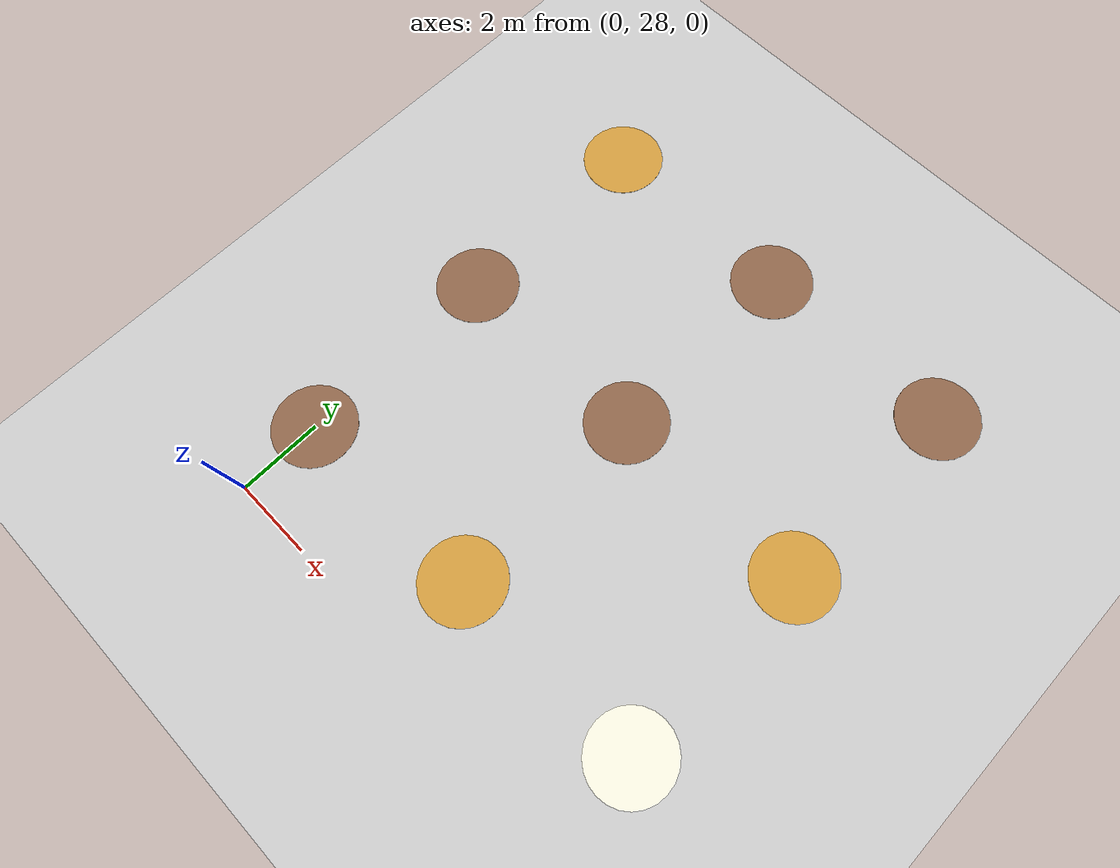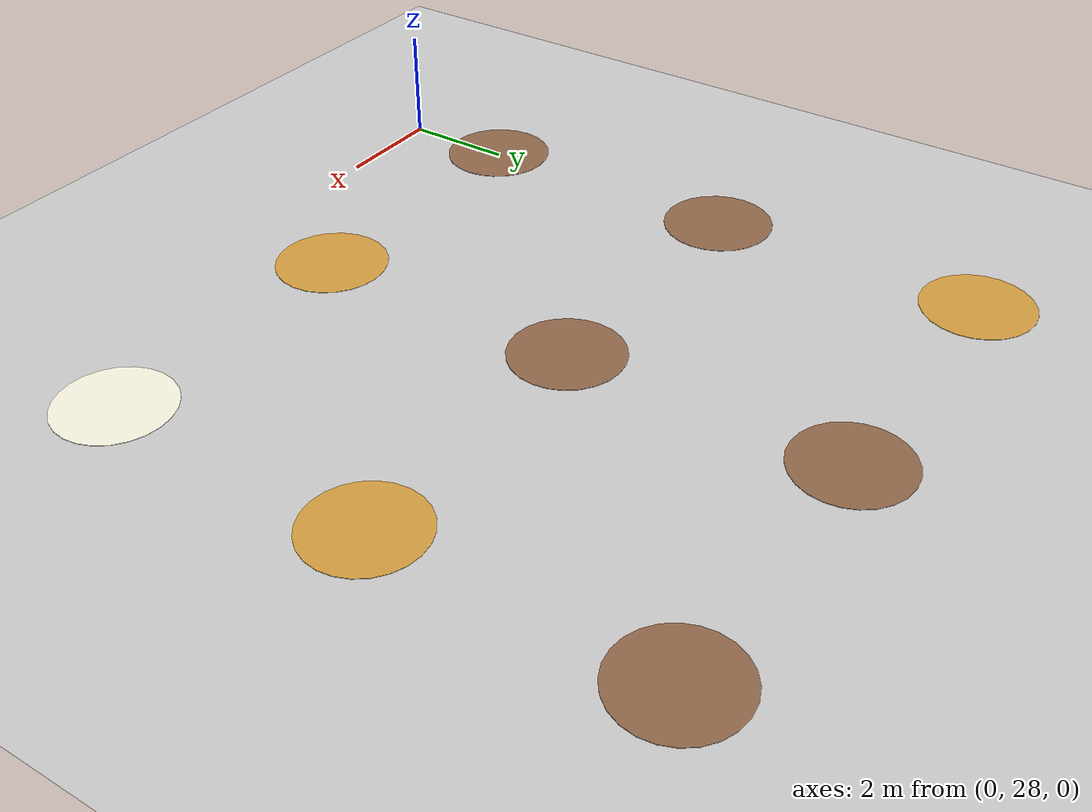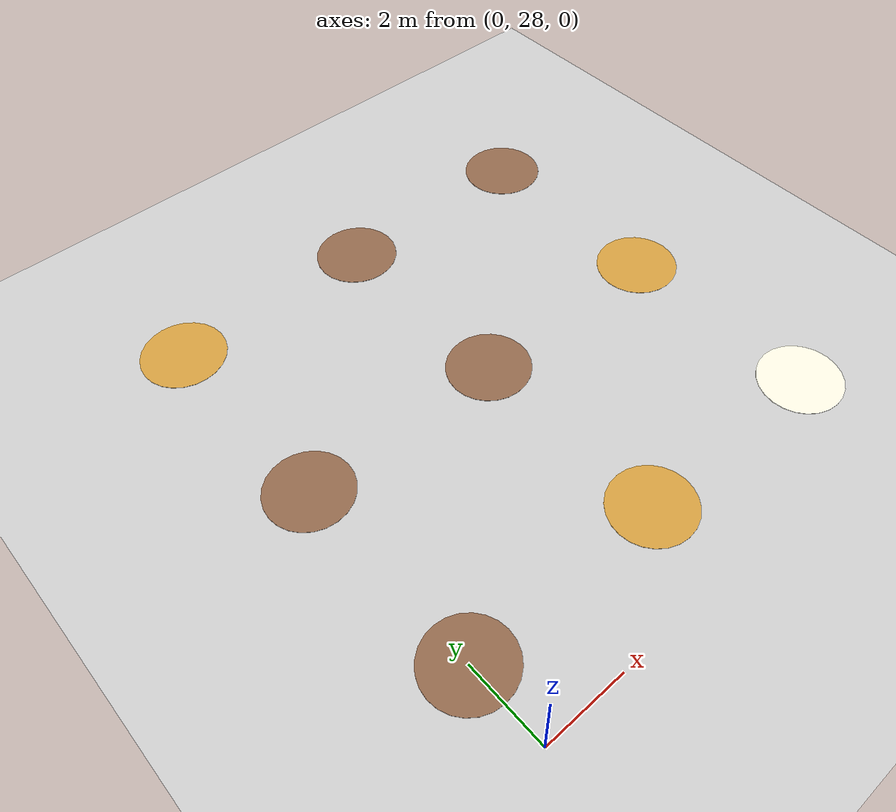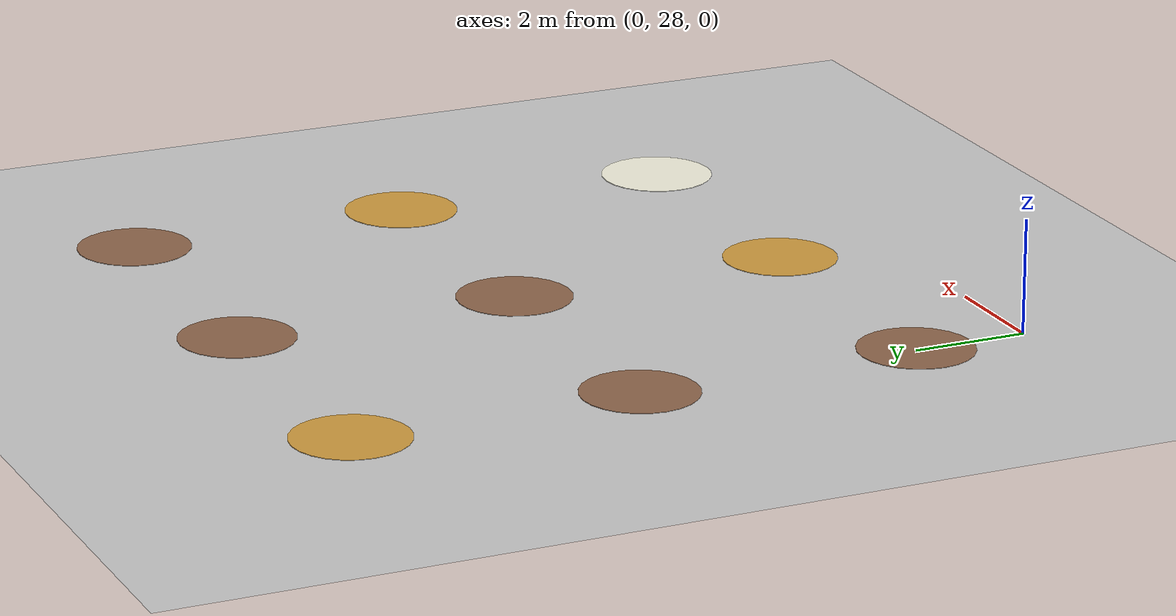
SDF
<sdf version="1.5">
 <world name="default">
  <physics type="ode">
   <ode>
    <solver><type>quick</type><iters>100</iters><sor>1.0</sor></solver>
    <constraints>
     <cfm>0.0</cfm>
     <erp>0.9</erp>
     <contact_max_correcting_vel>0.1</contact_max_correcting_vel>
     <contact_surface_layer>0.0</contact_surface_layer>
    </constraints>
   </ode>
   <real_time_update_rate>-1</real_time_update_rate>
  </physics>
  <model name="ground_plane">
   <static>true</static>
   <link name="link">
    <collision name="collision">
     <geometry><plane><normal>0 0 1</normal><size>5000 5000</size></plane></geometry>
     <surface><friction><ode><mu>1</mu><mu2>1</mu2></ode></friction></surface>
    </collision>
    <visual name="runway">
     <pose>000 0 0.005 0 0 0</pose>
     <cast_shadows>false</cast_shadows>
     <geometry><plane><normal>0 0 1</normal><size>1829 45</size></plane></geometry>
     <material>
      <script><uri>file://media/materials/scripts/gazebo.material</uri><name>Gazebo/Runway</name></script>
     </material>
    </visual>
    <visual name="grass">
     <pose>0 0 -0.1 0 0 0</pose>
     <cast_shadows>false</cast_shadows>
     <geometry><plane><normal>0 0 1</normal><size>5000 5000</size></plane></geometry>
     <material>
      <script><uri>file://media/materials/scripts/gazebo.material</uri><name>Gazebo/Grass</name></script>
     </material>
    </visual>
   </link>
  </model>
  <include><uri>model://sun</uri></include>
  <model name="zdrowe_drzewo">
   <static>true</static>
   <include><uri>model://zdrowe_drzewo</uri></include>
   <pose>0 30 0.05 0 0 0</pose>
  </model>
  <model name="parch_drzewo">
   <static>true</static>
   <include><uri>model://parch_drzewo</uri></include>
   <pose>5 30 0.05 0 0 0</pose>
  </model>
  <model name="moczniak_jabloni_drzewo">
   <static>true</static>
   <include><uri>model://moczniak_jabloni_drzewo</uri></include>
   <pose>10 30 0.05 0 0 0</pose>
  </model>
  <model name="zdrowe_drzewo1">
   <static>true</static>
   <include><uri>model://zdrowe_drzewo</uri></include>
   <pose>0 35 0.05 0 0 0</pose>
  </model>
  <model name="zdrowe_drzewo2">
   <static>true</static>
   <include><uri>model://zdrowe_drzewo</uri></include>
   <pose>5 35 0.05 0 0 0</pose>
  </model>
  <model name="parch_drzewo1">
   <static>true</static>
   <include><uri>model://parch_drzewo</uri></include>
   <pose>10 35 0.05 0 0 0</pose>
  </model>
  <model name="parch_drzewo2">
   <static>true</static>
   <include><uri>model://parch_drzewo</uri></include>
   <pose>0 40 0.05 0 0 0</pose>
  </model>
  <model name="zdrowe_drzewo3">
   <static>true</static>
   <include><uri>model://zdrowe_drzewo</uri></include>
   <pose>5 40 0.05 0 0 0</pose>
  </model>
  <model name="zdrowe_drzewo4">
   <static>true</static>
   <include><uri>model://zdrowe_drzewo</uri></include>
   <pose>10 40 0.05 0 0 0</pose>
  </model>
 </world>
</sdf>

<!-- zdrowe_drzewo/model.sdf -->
<sdf version='1.7'>
  <model name='zdrowe_drzewo'>
    <link name='link_0'>
      <inertial>
        <mass>1</mass>
        <inertia>
          <ixx>0.145833</ixx>
          <ixy>0</ixy>
          <ixz>0</ixz>
          <iyy>0.145833</iyy>
          <iyz>0</iyz>
          <izz>0.125</izz>
        </inertia>
        <pose>0 0 0 0 -0 0</pose>
      </inertial>
      <pose>0 0 0 0 -0 0</pose>
      <gravity>1</gravity>
      <self_collide>0</self_collide>
      <kinematic>0</kinematic>
      <enable_wind>0</enable_wind>
      <visual name='visual'>
        <pose>0 0 0 0 -0 0</pose>
        <geometry>
          <cylinder>
            <radius>1</radius>
            <length>0.01</length>
          </cylinder>
        </geometry>
        <material>
          <lighting>1</lighting>
          <script>
            <uri>file://media/materials/scripts/gazebo.material</uri>
            <name>Gazebo/Grey</name>
          </script>
          <shader type='pixel'>
            <normal_map>__default__</normal_map>
          </shader>
          <ambient>0.57 0.41 0.3 1</ambient>

        </material>
        <transparency>0</transparency>
        <cast_shadows>1</cast_shadows>
      </visual>
    </link>
    <static>1</static>
    <allow_auto_disable>1</allow_auto_disable>
  </model>
</sdf>

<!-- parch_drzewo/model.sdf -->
<sdf version='1.7'>
  <model name='parch_drzewo'>
    <link name='link_0'>
      <inertial>
        <mass>1</mass>
        <inertia>
          <ixx>0.145833</ixx>
          <ixy>0</ixy>
          <ixz>0</ixz>
          <iyy>0.145833</iyy>
          <iyz>0</iyz>
          <izz>0.125</izz>
        </inertia>
        <pose>0 0 0 0 -0 0</pose>
      </inertial>
      <pose>0 0 0 0 0 0</pose>
      <gravity>1</gravity>
      <self_collide>0</self_collide>
      <kinematic>0</kinematic>
      <enable_wind>0</enable_wind>
      <visual name='visual'>
        <pose>0 0 0 0 -0 0</pose>
        <geometry>
          <cylinder>
            <radius>1</radius>
            <length>0.01</length>
          </cylinder>
        </geometry>
        <material>
          <lighting>1</lighting>
          <script>
            <uri>file://media/materials/scripts/gazebo.material</uri>
            <name>Gazebo/Grey</name>
          </script>
          <shader type='pixel'>
            <normal_map>__default__</normal_map>
          </shader>
          <ambient>0.83 0.62 0.25 1</ambient>

        </material>
        <transparency>0</transparency>
        <cast_shadows>1</cast_shadows>
      </visual>
    </link>
    <static>1</static>
    <allow_auto_disable>1</allow_auto_disable>
  </model>
</sdf>

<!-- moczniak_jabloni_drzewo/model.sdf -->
<sdf version='1.7'>
  <model name='parch_drzewo'>
    <link name='link_0'>
      <inertial>
        <mass>1</mass>
        <inertia>
          <ixx>0.145833</ixx>
          <ixy>0</ixy>
          <ixz>0</ixz>
          <iyy>0.145833</iyy>
          <iyz>0</iyz>
          <izz>0.125</izz>
        </inertia>
        <pose>0 0 0 0 -0 0</pose>
      </inertial>
      <pose>0 0 0 0 0 0</pose>
      <gravity>1</gravity>
      <self_collide>0</self_collide>
      <kinematic>0</kinematic>
      <enable_wind>0</enable_wind>
      <visual name='visual'>
        <pose>0 0 0 0 -0 0</pose>
        <geometry>
          <cylinder>
            <radius>1</radius>
            <length>0.01</length>
          </cylinder>
        </geometry>
        <material>
          <lighting>1</lighting>
          <script>
            <uri>file://media/materials/scripts/gazebo.material</uri>
            <name>Gazebo/Grey</name>
          </script>
          <shader type='pixel'>
            <normal_map>__default__</normal_map>
          </shader>
          <ambient>0.976 0.965 0.89 1</ambient>

        </material>
        <transparency>0</transparency>
        <cast_shadows>1</cast_shadows>
      </visual>
    </link>
    <static>1</static>
    <allow_auto_disable>1</allow_auto_disable>
  </model>
</sdf>
